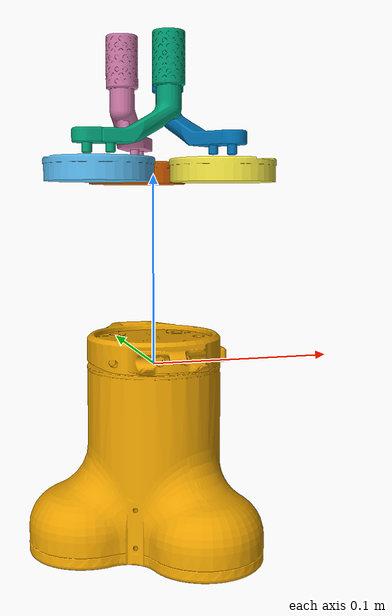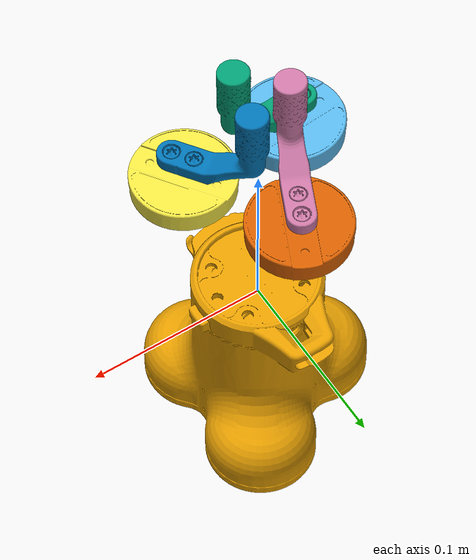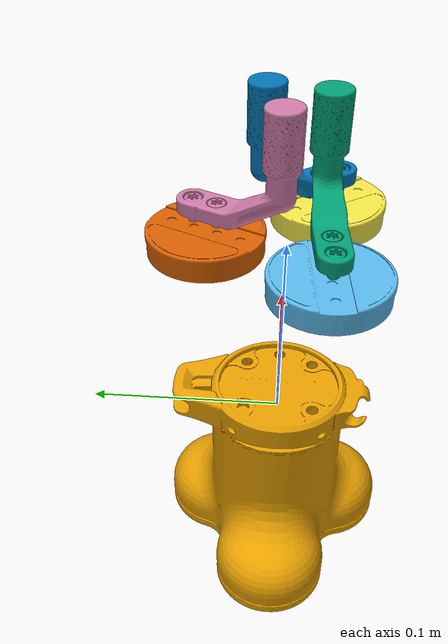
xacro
<?xml version="1.0" encoding="utf-8"?>

<robot name="onrobot_3fg25" xmlns:xacro="http://www.ros.org/wiki/xacro">

  <!-- ================= Xacro arguments ================= -->

  <xacro:arg name="mesh_path" default="package://onrobot_3fg25/meshes"/>
  <xacro:arg name="host" default="127.0.0.1"/>
  <xacro:arg name="port" default="502"/>

  <!-- Silicone, steel or knurled -->
  <xacro:arg name="fingertip_material" default="silicone"/>

  <!-- Position 1 is 12 mm backwards, position 2 is default, position 3 is 12 mm forwards. -->
  <xacro:arg name="fingertip_position" default="2"/>

  <!-- Joint properties -->
  <xacro:arg name="finger_effort" default="16.47"/>
  <xacro:arg name="finger_velocity" default="1.23"/>
  <xacro:property name="finger_lower_limit" value="0"/>
  <xacro:property name="finger_upper_limit" value="2.70526"/>

  <!-- ================= Fingertip material and collision properties ================= -->

  <xacro:if value="${'$(arg fingertip_material)' == 'silicone'}">
    <xacro:property name="fingertip_mesh" value="Ø165_silicone_fingertip_link"/>
    <xacro:property name="fingertip_mu" value="0.4"/>
  </xacro:if>

  <xacro:if value="${'$(arg fingertip_material)' == 'steel'}">
    <xacro:property name="fingertip_mesh" value="Ø13_steel_fingertip_link"/>
    <xacro:property name="fingertip_mu" value="0.15"/>

  </xacro:if>

  <xacro:if value="${'$(arg fingertip_material)' == 'knurled'}">
    <xacro:property name="fingertip_mesh" value="knurled_steel_fingertip_link"/>
    <xacro:property name="fingertip_mesh" value="Ø13_steel_fingertip_link"/>
    <xacro:property name="fingertip_mu" value="0.6"/>

  </xacro:if>

  <!-- ================= Fingertip mounting position ================= -->

<!-- Position 1: 12 mm backwards -->
  <xacro:if value="${'$(arg fingertip_position)' == '1'}">
    <xacro:property name="fingertip_x_offset" value="-0.012"/>
  </xacro:if>

<!-- Position 2: default position -->
  <xacro:if value="${'$(arg fingertip_position)' == '2'}">
    <xacro:property name="fingertip_x_offset" value="0"/>
  </xacro:if>

<!-- Position 3: 12 mm forwards -->
  <xacro:if value="${'$(arg fingertip_position)' == '3'}">
    <xacro:property name="fingertip_x_offset" value="0.012"/>
  </xacro:if>

  <!-- ================= Shared finger base macro ================= -->

  <xacro:macro name="finger_base" params="side">

    <link name="${side}_finger_base_link">

    <inertial>
      <origin
        xyz="1.2871E-09 4.4895E-06 0.005108"
        rpy="0 0 0"/>
      <mass
        value="0.20122"/>
      <inertia
        ixx="4.0179E-05"
        ixy="-1.8959E-12"
        ixz="2.5759E-14"
        iyy="3.9216E-05"
        iyz="4.0292E-09"
        izz="7.5207E-05"/>
    </inertial>

      <visual>
        <origin
          xyz="0 0 0.008"
          rpy="0 0 ${pi}"/>
        <geometry>
          <mesh filename="$(arg mesh_path)/finger_base_link.dae"/>
        </geometry>
      </visual>

    <collision>
      <origin
        xyz="0 0 0"
        rpy="0 0 0" />
      <geometry>
        <mesh filename="$(arg mesh_path)/finger_base_link.STL"/>
      </geometry>
    </collision>
    </link>

  </xacro:macro>

  <!-- ================= Shared fingertip macro ================= -->

  <xacro:macro name="fingertip" params="side">

    <link name="${side}_fingertip_link">

      <inertial>
        <origin
          xyz="0.019608 -2.1641E-06 -0.011747"
          rpy="0 0 0"/>
        <mass
          value="0.07505"/>
        <inertia
          ixx="4.2087E-06"
          ixy="-2.0056E-09"
          ixz="4.3014E-06"
          iyy="1.3719E-05"
          iyz="6.994E-10"
          izz="1.1342E-05"/>
      </inertial>

      <visual>
        <origin xyz="0 0 0" rpy="0 0 0"/>
        <geometry>
          <mesh filename="$(arg mesh_path)/${fingertip_mesh}.dae"/>
        </geometry>
      </visual>

    <collision>
      <origin
        xyz="0 0 0"
        rpy="0 0 0" />
      <geometry>
          <mesh filename="$(arg mesh_path)/${fingertip_mesh}.STL"/>
      </geometry>
    </collision>

    </link>

    <joint name="${side}_fingertip_joint" type="fixed">
      <origin
        xyz="${fingertip_x_offset} 0 0"
        rpy="0 0 0"/>
      <parent link="${side}_finger_base_link"/>
      <child link="${side}_fingertip_link"/>
    </joint>

    <gazebo reference="${side}_fingertip_link">
      <mu1>${fingertip_mu}</mu1>
      <mu2>${fingertip_mu}</mu2>
    </gazebo>

  </xacro:macro>

  <!-- ================= Base link ================= -->

  <link name="base_link">

    <inertial>
      <origin
        xyz="-0.00030817 6.561E-05 0.079077"
        rpy="0 0 0"/>
      <mass value="0.70952"/>
      <inertia
        ixx="0.00082218"
        ixy="-3.3986E-07"
        ixz="4.3329E-07"
        iyy="0.00082782"
        iyz="-2.8894E-07"
        izz="0.0012893"/>
    </inertial>

    <visual>
      <origin
        xyz="0 0 0.0138"
        rpy="${pi} 0 -${pi / 2}"/>
      <geometry>
        <mesh filename="$(arg mesh_path)/base_link.dae"/>
      </geometry>
    </visual>

    <collision>
      <origin
        xyz="0 0 0"
        rpy="0 0 0" />
      <geometry>
        <mesh filename="$(arg mesh_path)/base_link.STL"/>
      </geometry>
    </collision>

  </link>

  <!-- ================= Left finger base ================= -->

  <xacro:finger_base side="left" />

  <joint name="finger_angle" type="revolute">

    <origin
      xyz="-0.032043 -0.0185 0.1148"
      rpy="3.1416 0 0.087266"/>
    <parent link="base_link"/>
    <child link="left_finger_base_link"/>
    <axis xyz="0 0 1"/>
    <limit
      lower="${finger_lower_limit}"
      upper="${finger_upper_limit}"
      effort="$(arg finger_effort)"
      velocity="$(arg finger_velocity)"/>
  </joint>

  <!-- ================= Left fingertip ================= -->

  <xacro:fingertip side ="left"/>

  <!-- ================= Right finger base ================= -->

  <xacro:finger_base side="right" />

  <joint name="right_finger_base_joint" type="revolute">

    <origin
      xyz="0.032043 -0.0185 0.1148"
      rpy="-3.1416 0 2.1817"/>
    <parent link="base_link"/>
    <child link="right_finger_base_link"/>
    <axis xyz="0 0 1"/>
    <limit
      lower="${finger_lower_limit}"
      upper="${finger_upper_limit}"
      effort="$(arg finger_effort)"
      velocity="$(arg finger_velocity)"/>
    <mimic
      joint="finger_angle"
      multiplier="1"
      offset="0"/>
  </joint>

  <!-- ================= Right fingertip ================= -->

  <xacro:fingertip side ="right"/>

  <!-- ================= Middle finger base ================= -->

  <xacro:finger_base side="middle" />

  <joint name="middle_finger_base_joint" type="revolute">
    <origin
      xyz="0 0.037 0.1148"
      rpy="3.1416 0 -2.0071"/>
    <parent link="base_link"/>
    <child link="middle_finger_base_link"/>
    <axis xyz="0 0 1"/>
    <limit
      lower="${finger_lower_limit}"
      upper="${finger_upper_limit}"
      effort="$(arg finger_effort)"
      velocity="$(arg finger_velocity)"/>
    <mimic
      joint="finger_angle"
      multiplier="1"
      offset="0"/>
  </joint>

  <!-- ================= Middle fingertip ================= -->

  <xacro:fingertip side ="middle"/>

  <link name="grip_diameter_control_link"/>
  <joint name="grip_diameter" type="prismatic">
    <parent link="base_link"/><child link="grip_diameter_control_link"/>
    <axis xyz="1 0 0"/><limit lower="0" upper="0.160" effort="100" velocity="1"/>
  </joint>
  <ros2_control name="OnRobot3FG25System" type="system">
    <hardware>
      <plugin>onrobot_gripper_hardware/OnRobotThreeFingerSystem</plugin>
      <param name="model">3fg25</param><param name="transport">tcp</param>
      <param name="host">$(arg host)</param><param name="port">$(arg port)</param>
      <param name="slave_id">65</param><param name="default_force_percent">20.0</param>
      <!-- The device angle increases while this URDF's visible joint closes. -->
      <param name="urdf_finger_angle_scale">-1.0</param>
      <param name="urdf_finger_angle_offset">2.70526</param>
      <param name="urdf_finger_angle_minimum">${finger_lower_limit}</param>
      <param name="urdf_finger_angle_maximum">${finger_upper_limit}</param>
      <param name="fingertip_position">$(arg fingertip_position)</param>
      <param name="poll_period_ms">20</param>
    </hardware>
    <joint name="grip_diameter">
      <command_interface name="position"/><command_interface name="effort"/>
      <state_interface name="position"/><state_interface name="velocity"/>
      <!-- Native live limits in metres, surfaced on /dynamic_joint_states. -->
      <state_interface name="minimum_external_diameter"/>
      <state_interface name="maximum_external_diameter"/>
      <state_interface name="task_position_valid"/>
      <state_interface name="force_valid"/>
      <state_interface name="busy"/>
      <state_interface name="grip_detected"/>
      <state_interface name="active_mode"/>
      <state_interface name="connection_state"/>
      <state_interface name="faulted"/>
      <state_interface name="fault_code"/>
      <state_interface name="firmware_qualification"/>
      <state_interface name="sample_sequence"/>
      <state_interface name="sample_age"/>
      <state_interface name="successful_cycles"/>
      <state_interface name="failed_cycles"/>
      <state_interface name="missed_deadlines"/>
      <state_interface name="watchdog_stops"/>
      <state_interface name="reconnects"/>
      <state_interface name="last_cycle_duration"/>
      <state_interface name="diagnostic_status_valid"/>
      <state_interface name="diagnostic_raw_status"/>
      <state_interface name="diagnostic_busy"/>
      <state_interface name="diagnostic_grip_detected"/>
      <state_interface name="diagnostic_sample_sequence"/>
      <state_interface name="diagnostic_age"/>
      <state_interface name="diagnostic_force_percent"/>
      <state_interface name="diagnostic_finger_angle_rad"/>
      <state_interface name="diagnostic_diameter_mm"/>
      <state_interface name="diagnostic_diameter_with_tip_offset_mm"/>
      <state_interface name="diagnostic_voltage_24v_v"/>
      <state_interface name="diagnostic_motor_current"/>
      <state_interface name="diagnostic_temperature"/>
      <state_interface name="diagnostic_minimum_external_aperture_mm"/>
      <state_interface name="diagnostic_maximum_external_aperture_mm"/>
      <state_interface name="diagnostic_minimum_internal_aperture_mm"/>
      <state_interface name="diagnostic_maximum_internal_aperture_mm"/>
      <state_interface name="diagnostic_current_external_aperture_mm"/>
      <state_interface name="diagnostic_current_internal_aperture_mm"/>
      <state_interface name="diagnostic_fingertip_offset_mm"/>
      <state_interface name="diagnostic_boost_power_limit_w"/>
      <state_interface name="diagnostic_three_finger_force_grip_detected"/>
      <state_interface name="diagnostic_three_finger_calibration_valid"/>
      <state_interface name="diagnostic_three_finger_grip_lost"/>
      <state_interface name="diagnostic_three_finger_position"/>
    </joint>
    <joint name="finger_angle">
      <state_interface name="position"/><state_interface name="velocity"/>
      <state_interface name="measured_angular_position"/>
      <state_interface name="measured_angular_velocity"/>
      <state_interface name="position_valid"/>
      <state_interface name="velocity_valid"/>
    </joint>
  </ros2_control>

</robot>
